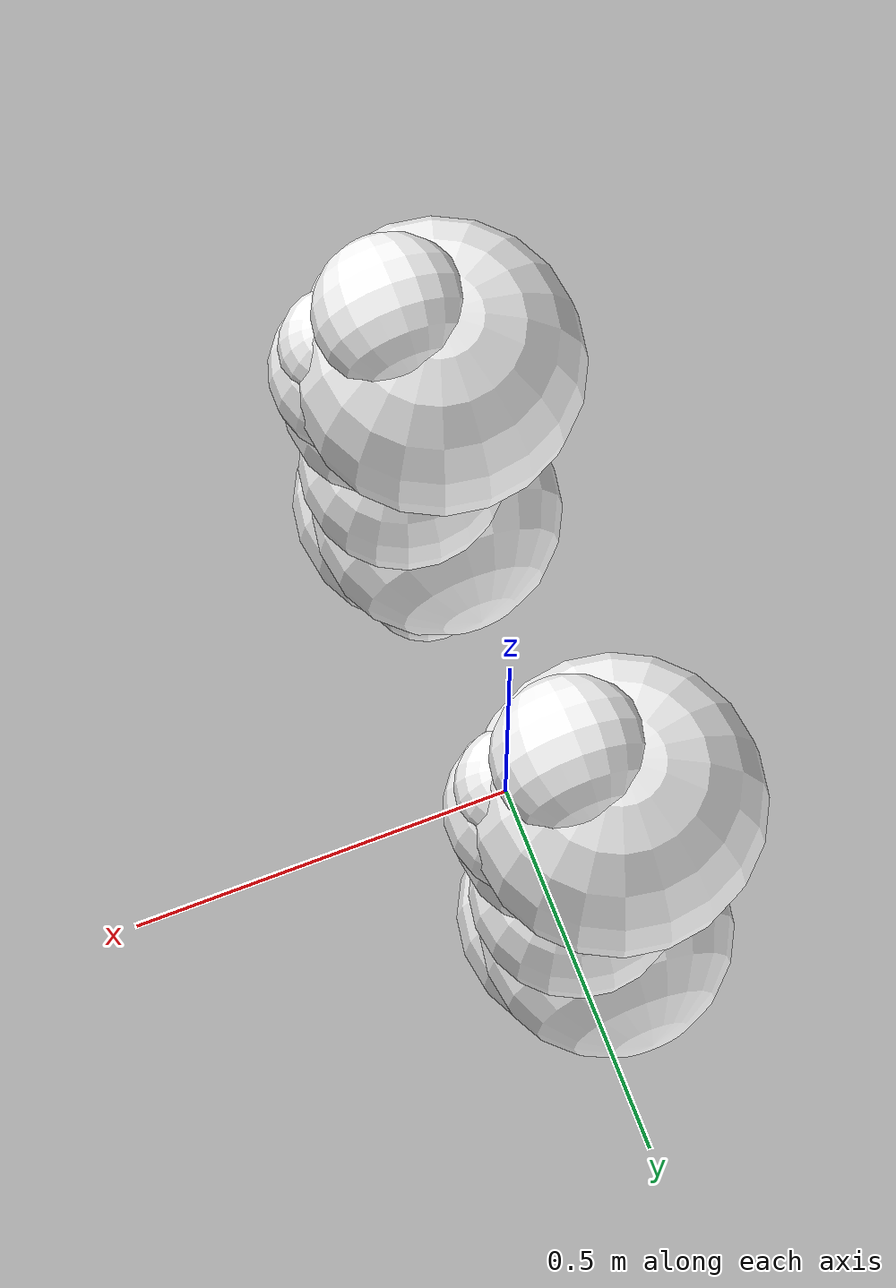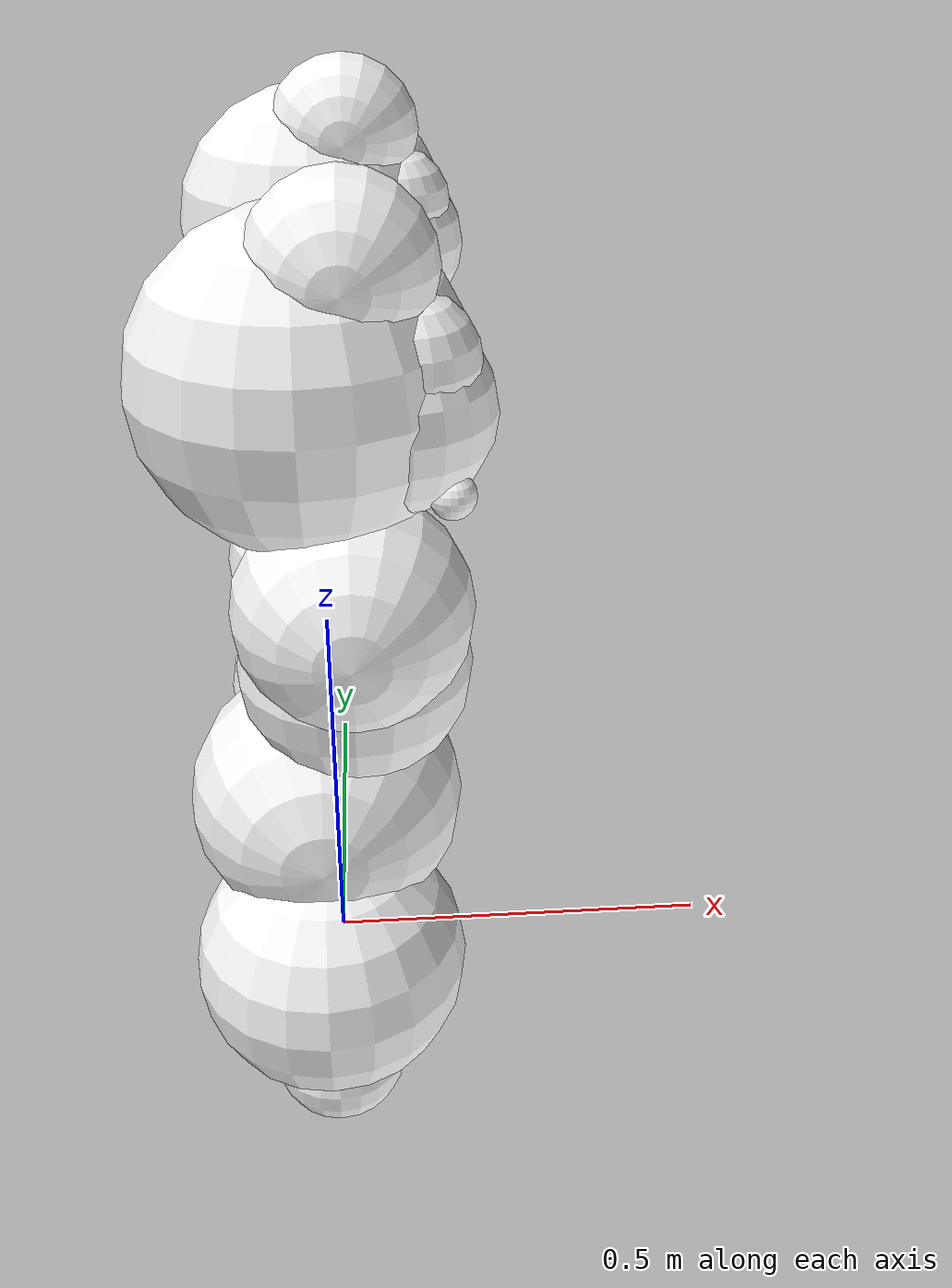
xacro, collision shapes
<?xml version="1.0" encoding="utf-8"?>
<robot name="bipanda" xmlns:xacro="http://www.ros.org/wiki/xacro" path="assets/panda/panda.urdf">
    <link name="world"/>

    <xacro:macro name="panda_arm" params="prefix parent:=world base_xyz:='0 0 0' base_rpy:='0 0 0'">
        <joint name="${prefix}mount" type="fixed">
            <parent link="${parent}"/>
            <child  link="${prefix}panda_link0"/>
            <origin xyz="${base_xyz}" rpy="${base_rpy}"/>
        </joint>
        <link name="${prefix}panda_link0">
            <inertial>
                <origin rpy="0 0 0" xyz="0 0 0.05"></origin>
                <mass value="2.9"></mass>
                <inertia ixx="0.1" ixy="0" ixz="0" iyy="0.1" iyz="0" izz="0.1"></inertia>
            </inertial>
            <visual>
                <geometry>
                    <mesh filename="meshes/collision/link0.obj"></mesh>
                </geometry>
                <material name="panda_white">
                    <color rgba="1. 1. 1. 1."></color>
                </material>
            </visual>
            <collision>
                <geometry>
                    <sphere radius="0.08"></sphere>
                </geometry>
                <origin xyz="0.0 0.0 0.05" rpy="0 0 0"></origin>
            </collision>
        </link>
        <link name="${prefix}panda_link1">
            <inertial>
                <origin rpy="0 0 0" xyz="0 -0.04 -0.05"></origin>
                <mass value="2.7"></mass>
                <inertia ixx="0.1" ixy="0" ixz="0" iyy="0.1" iyz="0" izz="0.1"></inertia>
            </inertial>
            <visual>
                <geometry>
                    <mesh filename="meshes/visual/link1.obj"></mesh>
                </geometry>
                <material name="panda_white"></material>
            </visual>
            <collision>
                <geometry>
                    <sphere radius="0.154"></sphere>
                </geometry>
                <origin xyz="-0.001 -0.039 -0.085" rpy="0 0 0"></origin>
            </collision>
        </link>
        <link name="${prefix}panda_link2">
            <inertial>
                <origin rpy="0 0 0" xyz="0 -0.04 0.06"></origin>
                <mass value="2.73"></mass>
                <inertia ixx="0.1" ixy="0" ixz="0" iyy="0.1" iyz="0" izz="0.1"></inertia>
            </inertial>
            <visual>
                <geometry>
                    <mesh filename="meshes/visual/link2.obj"></mesh>
                </geometry>
                <material name="panda_white"></material>
            </visual>
            <collision>
                <geometry>
                    <sphere radius="0.154"></sphere>
                </geometry>
                <origin xyz="0.0 -0.085 0.04" rpy="0 0 0"></origin>
            </collision>
        </link>
        <link name="${prefix}panda_link3">
            <inertial>
                <origin rpy="0 0 0" xyz="0.01 0.01 -0.05"></origin>
                <mass value="2.04"></mass>
                <inertia ixx="0.1" ixy="0" ixz="0" iyy="0.1" iyz="0" izz="0.1"></inertia>
            </inertial>
            <visual>
                <geometry>
                    <mesh filename="meshes/visual/link3.obj"></mesh>
                </geometry>
                <material name="${prefix}panda_red">
                    <color rgba="1. 1. 1. 1."></color>
                </material>
            </visual>
            <collision>
                <geometry>
                    <sphere radius="0.128"></sphere>
                </geometry>
                <origin xyz="0.039 0.028 -0.052" rpy="0 0 0"></origin>
            </collision>
        </link>
        <link name="${prefix}panda_link4">
            <inertial>
                <origin rpy="0 0 0" xyz="-0.03 0.03 0.02"></origin>
                <mass value="2.08"></mass>
                <inertia ixx="0.1" ixy="0" ixz="0" iyy="0.1" iyz="0" izz="0.1"></inertia>
            </inertial>
            <visual>
                <geometry>
                    <mesh filename="meshes/visual/link4.obj"></mesh>
                </geometry>
                <material name="panda_white"></material>
            </visual>
            <collision>
                <geometry>
                    <sphere radius="0.126"></sphere>
                </geometry>
                <origin xyz="-0.042 0.049 0.029" rpy="0 0 0"></origin>
            </collision>
        </link>
        <link name="${prefix}panda_link5">
            <inertial>
                <origin rpy="0 0 0" xyz="0 0.04 -0.12"></origin>
                <mass value="3"></mass>
                <inertia ixx="0.1" ixy="0" ixz="0" iyy="0.1" iyz="0" izz="0.1"></inertia>
            </inertial>
            <visual>
                <geometry>
                    <mesh filename="meshes/visual/link5.obj"></mesh>
                </geometry>
                <material name="panda_white"></material>
            </visual>
            <collision>
                <geometry>
                    <sphere radius="0.176"></sphere>
                </geometry>
                <origin xyz="-0.001 0.037 -0.11" rpy="0 0 0"></origin>
            </collision>
        </link>
        <link name="${prefix}panda_link6">
            <inertial>
                <origin rpy="0 0 0" xyz="0.04 0 0"></origin>
                <mass value="1.3"></mass>
                <inertia ixx="0.1" ixy="0" ixz="0" iyy="0.1" iyz="0" izz="0.1"></inertia>
            </inertial>
            <visual>
                <geometry>
                    <mesh filename="meshes/visual/link6.obj"></mesh>
                </geometry>
                <material name="panda_white"></material>
            </visual>
            <collision>
                <geometry>
                    <sphere radius="0.095"></sphere>
                </geometry>
                <origin xyz="0.042 0.014 0.0" rpy="0 0 0"></origin>
            </collision>
        </link>
        <link name="${prefix}panda_link7">
            <inertial>
                <origin rpy="0 0 0" xyz="0 0 0.08"></origin>
                <mass value=".2"></mass>
                <inertia ixx="0.1" ixy="0" ixz="0" iyy="0.1" iyz="0" izz="0.1"></inertia>
            </inertial>
            <visual>
                <geometry>
                    <mesh filename="meshes/collision/link7.obj"></mesh>
                </geometry>
                <material name="panda_white"></material>
            </visual>
            <collision>
                <geometry>
                    <sphere radius="0.072"></sphere>
                </geometry>
                <origin xyz="0.015 0.015 0.075" rpy="0 0 0"></origin>
            </collision>
        </link>
        <link name="${prefix}panda_link8">
            <inertial>
                <origin rpy="0 0 0" xyz="0 0 0"></origin>
                <mass value="0.0"></mass>
                <inertia ixx="0.1" ixy="0" ixz="0" iyy="0.1" iyz="0" izz="0.1"></inertia>
            </inertial>
        </link>
        <link name="${prefix}panda_hand">
            <inertial>
                <origin rpy="0 0 0" xyz="0 0 0.04"></origin>
                <mass value=".81"></mass>
                <inertia ixx="0.1" ixy="0" ixz="0" iyy="0.1" iyz="0" izz="0.1"></inertia>
            </inertial>
            <visual>
                <geometry>
                    <mesh filename="meshes/visual/hand.obj"></mesh>
                </geometry>
                <material name="panda_white"></material>
            </visual>
            <collision>
                <geometry>
                    <sphere radius="0.104"></sphere>
                </geometry>
                <origin xyz="0.0 -0.0 0.022" rpy="0 0 0"></origin>
            </collision>
        </link>
        <link name="${prefix}panda_leftfinger">
            <contact>
                <friction_anchor></friction_anchor>
                <stiffness value="30000.0"></stiffness>
                <damping value="1000.0"></damping>
                <spinning_friction value="0.1"></spinning_friction>
                <lateral_friction value="1.0"></lateral_friction>
            </contact>
            <inertial>
                <origin rpy="0 0 0" xyz="0 0.01 0.02"></origin>
                <mass value="0.1"></mass>
                <inertia ixx="0.1" ixy="0" ixz="0" iyy="0.1" iyz="0" izz="0.1"></inertia>
            </inertial>
            <visual>
                <geometry>
                    <mesh filename="meshes/visual/finger.obj"></mesh>
                </geometry>
                <material name="panda_white"></material>
            </visual>
            <collision>
                <geometry>
                    <sphere radius="0.024"></sphere>
                </geometry>
                <origin xyz="0.0 0.012 0.033" rpy="0 0 0"></origin>
            </collision>
        </link>
        <link name="${prefix}panda_rightfinger">
            <contact>
                <friction_anchor></friction_anchor>
                <stiffness value="30000.0"></stiffness>
                <damping value="1000.0"></damping>
                <spinning_friction value="0.1"></spinning_friction>
                <lateral_friction value="1.0"></lateral_friction>
            </contact>
            <inertial>
                <origin rpy="0 0 0" xyz="0 -0.01 0.02"></origin>
                <mass value="0.1"></mass>
                <inertia ixx="0.1" ixy="0" ixz="0" iyy="0.1" iyz="0" izz="0.1"></inertia>
            </inertial>
            <visual>
                <origin rpy="0 0 3.14159265359" xyz="0 0 0"></origin>
                <geometry>
                    <mesh filename="meshes/visual/finger.obj"></mesh>
                </geometry>
                <material name="panda_white"></material>
            </visual>
            <collision>
                <geometry>
                    <sphere radius="0.024"></sphere>
                </geometry>
                <origin xyz="0.0 -0.012 0.033" rpy="0 0 0"></origin>
            </collision>
        </link>
        <link name="${prefix}panda_grasptarget">
            <inertial>
                <origin rpy="0 0 0" xyz="0 0 0"></origin>
                <mass value="0.0"></mass>
                <inertia ixx="0.1" ixy="0" ixz="0" iyy="0.1" iyz="0" izz="0.1"></inertia>
            </inertial>
        </link>
        <joint name="${prefix}panda_joint1" type="revolute">
            <safety_controller k_position="100.0" k_velocity="40.0" soft_lower_limit="-2.8973" soft_upper_limit="2.8973"></safety_controller>
            <origin rpy="0 0 0" xyz="0 0 0.333"></origin>
            <parent link="${prefix}panda_link0"></parent>
            <child link="${prefix}panda_link1"></child>
            <axis xyz="0 0 1"></axis>
            <limit effort="87" lower="-2.9671" upper="2.9671" velocity="2.3925"></limit>
        </joint>
        <joint name="${prefix}panda_joint2" type="revolute">
            <safety_controller k_position="100.0" k_velocity="40.0" soft_lower_limit="-1.7628" soft_upper_limit="1.7628"></safety_controller>
            <origin rpy="-1.57079632679 0 0" xyz="0 0 0"></origin>
            <parent link="${prefix}panda_link1"></parent>
            <child link="${prefix}panda_link2"></child>
            <axis xyz="0 0 1"></axis>
            <limit effort="87" lower="-1.8326" upper="1.8326" velocity="2.3925"></limit>
        </joint>
        <joint name="${prefix}panda_joint3" type="revolute">
            <safety_controller k_position="100.0" k_velocity="40.0" soft_lower_limit="-2.8973" soft_upper_limit="2.8973"></safety_controller>
            <origin rpy="1.57079632679 0 0" xyz="0 -0.316 0"></origin>
            <parent link="${prefix}panda_link2"></parent>
            <child link="${prefix}panda_link3"></child>
            <axis xyz="0 0 1"></axis>
            <limit effort="87" lower="-2.9671" upper="2.9671" velocity="2.3925"></limit>
        </joint>
        <joint name="${prefix}panda_joint4" type="revolute">
            <safety_controller k_position="100.0" k_velocity="40.0" soft_lower_limit="-3.0718" soft_upper_limit="-0.0698"></safety_controller>
            <origin rpy="1.57079632679 0 0" xyz="0.0825 0 0"></origin>
            <parent link="${prefix}panda_link3"></parent>
            <child link="${prefix}panda_link4"></child>
            <axis xyz="0 0 1"></axis>
            <limit effort="87" lower="-3.1416" upper="0.0873" velocity="2.3925"></limit>
        </joint>
        <joint name="${prefix}panda_joint5" type="revolute">
            <safety_controller k_position="100.0" k_velocity="40.0" soft_lower_limit="-2.8973" soft_upper_limit="2.8973"></safety_controller>
            <origin rpy="-1.57079632679 0 0" xyz="-0.0825 0.384 0"></origin>
            <parent link="${prefix}panda_link4"></parent>
            <child link="${prefix}panda_link5"></child>
            <axis xyz="0 0 1"></axis>
            <limit effort="12" lower="-2.9671" upper="2.9671" velocity="2.8710"></limit>
        </joint>
        <joint name="${prefix}panda_joint6" type="revolute">
            <safety_controller k_position="100.0" k_velocity="40.0" soft_lower_limit="-0.0175" soft_upper_limit="3.7525"></safety_controller>
            <origin rpy="1.57079632679 0 0" xyz="0 0 0"></origin>
            <parent link="${prefix}panda_link5"></parent>
            <child link="${prefix}panda_link6"></child>
            <axis xyz="0 0 1"></axis>
            <limit effort="12" lower="-0.0873" upper="3.8223" velocity="2.8710"></limit>
        </joint>
        <joint name="${prefix}panda_joint7" type="revolute">
            <safety_controller k_position="100.0" k_velocity="40.0" soft_lower_limit="-2.8973" soft_upper_limit="2.8973"></safety_controller>
            <origin rpy="1.57079632679 0 0" xyz="0.088 0 0"></origin>
            <parent link="${prefix}panda_link6"></parent>
            <child link="${prefix}panda_link7"></child>
            <axis xyz="0 0 1"></axis>
            <limit effort="12" lower="-2.9671" upper="2.9671" velocity="2.8710"></limit>
        </joint>
        <joint name="${prefix}panda_joint8" type="fixed">
            <origin rpy="0 0 0" xyz="0 0 0.107"></origin>
            <parent link="${prefix}panda_link7"></parent>
            <child link="${prefix}panda_link8"></child>
            <axis xyz="0 0 0"></axis>
        </joint>
        <joint name="${prefix}panda_hand_joint" type="fixed">
            <parent link="${prefix}panda_link8"></parent>
            <child link="${prefix}panda_hand"></child>
            <origin rpy="0 0 -0.785398163397" xyz="0 0 0"></origin>
        </joint>
        <joint name="${prefix}panda_finger_joint1" type="fixed">
            <parent link="${prefix}panda_hand"></parent>
            <child link="${prefix}panda_leftfinger"></child>
            <origin rpy="0 0 0" xyz="0 0.065 0.0584"></origin>
            <axis xyz="0 1 0"></axis>
        </joint>
        <joint name="${prefix}panda_finger_joint2" type="fixed">
            <parent link="${prefix}panda_hand"></parent>
            <child link="${prefix}panda_rightfinger"></child>
            <origin rpy="0 0 0" xyz="0 -0.065 0.0584"></origin>
            <axis xyz="0 -1 0"></axis>
            <mimic joint="${prefix}panda_finger_joint1"></mimic>
        </joint>
        <joint name="${prefix}panda_grasptarget_hand" type="fixed">
            <parent link="${prefix}panda_hand"></parent>
            <child link="${prefix}panda_grasptarget"></child>
            <origin rpy="0 0 0" xyz="0 0 0.105"></origin>
        </joint>
    </xacro:macro>

    <xacro:panda_arm parent="world" prefix="left_"  base_xyz="0 -0.2875 0" base_rpy="0 0 0"/>
    <xacro:panda_arm parent="world" prefix="right_" base_xyz="0 0.2875 0" base_rpy="0 0 0"/>
</robot>
